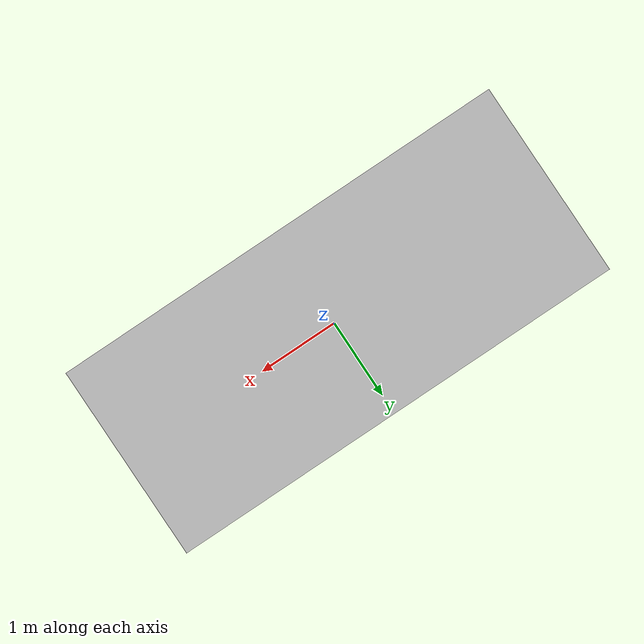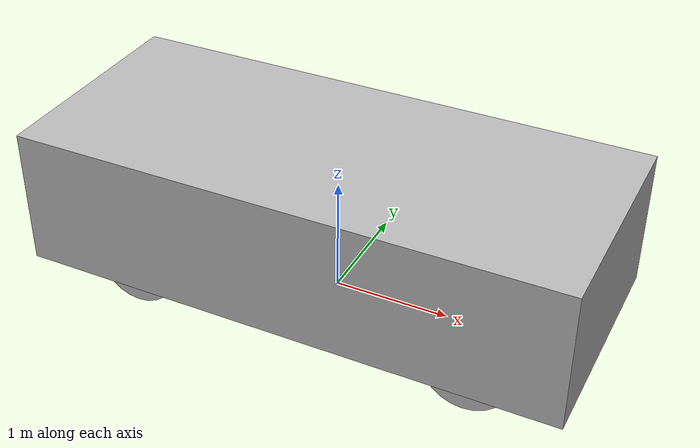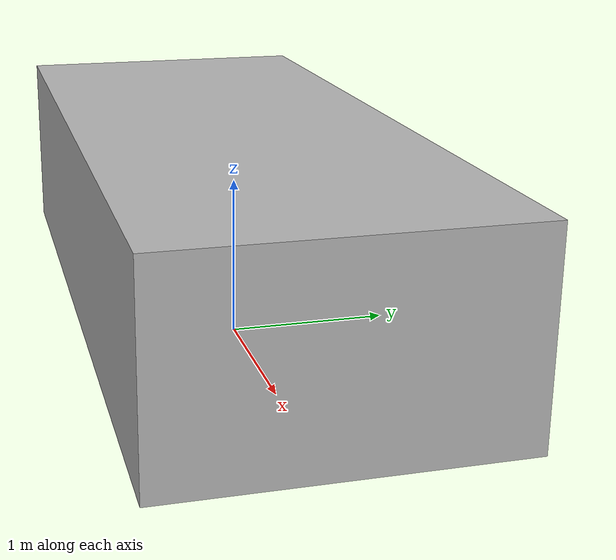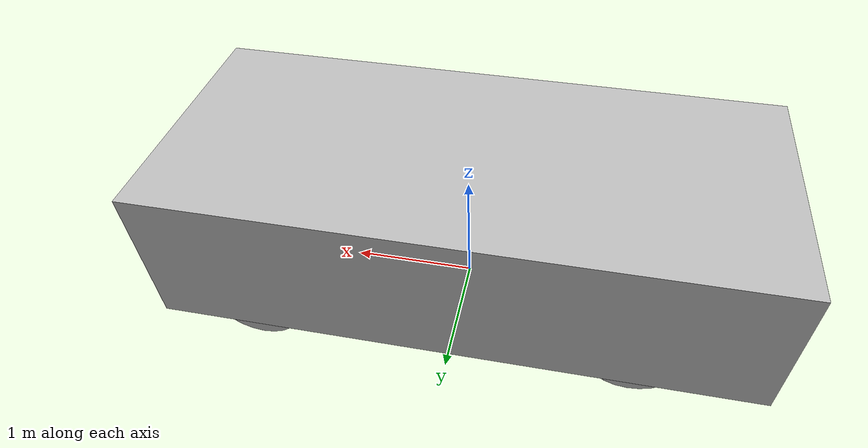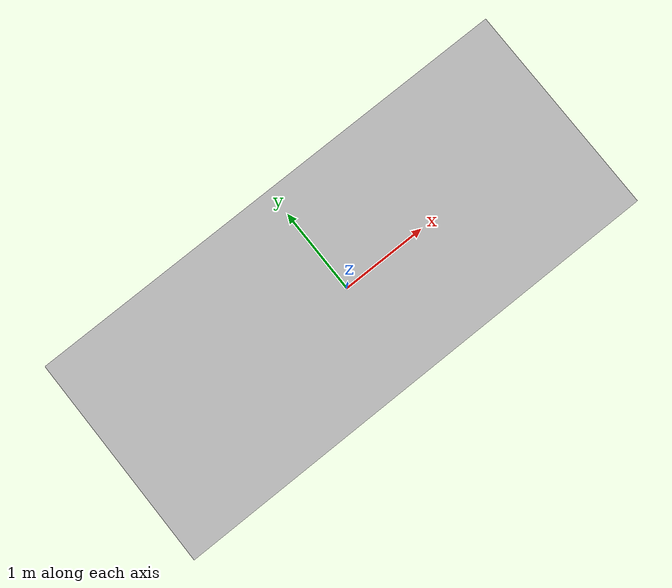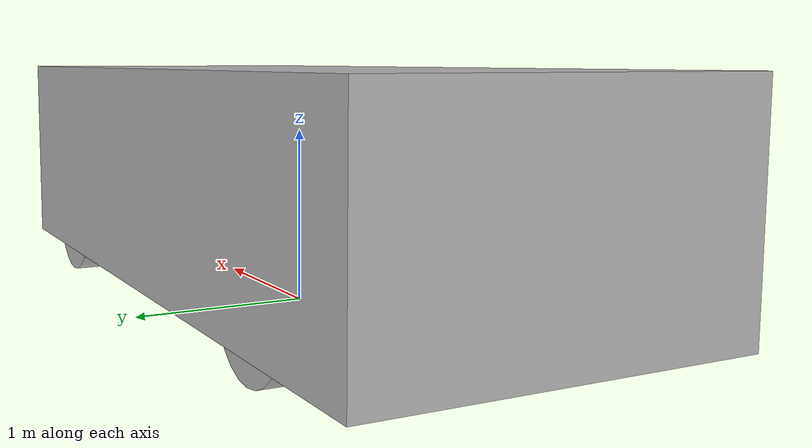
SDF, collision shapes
<?xml version="1.0"?>
<sdf version="1.7">
  <model name="mercedes_split_tex">
    <static>false</static>

    <!-- Chassis -->
    <link name="chassis">
      <pose>0 0 0 0 0 0</pose>
      <gravity>false</gravity>
      <inertial>
        <mass>800</mass>
        <inertia>
          <ixx>300</ixx><iyy>900</iyy><izz>1000</izz>
          <ixy>0</ixy><ixz>0</ixz><iyz>0</iyz>
        </inertia>
      </inertial>

      <visual name="body_visual">
        <!-- OBJ authored in Y-up; rotate to Gazebo Z-up + forward X -->
        <pose>0 0 0 1.5708 0 1.5708</pose>
        <geometry>
          <mesh>
            <uri>model://mercedes_split_tex/meshes/body.obj</uri>
            <scale>100 100 100</scale>
          </mesh>
        </geometry>
        <cast_shadows>false</cast_shadows>
      </visual>

      <collision name="chassis_collision">
        <pose>-0.05 0 0.76 0 0 0</pose>
        <geometry>
          <box><size>4.7 2.0 1.2</size></box>
        </geometry>
      </collision>
    </link>

    <!-- Front steering knuckles -->
    <link name="front_left_steer">
      <pose>1.5144 0.8183 0.3572 0 0 0</pose>
      <gravity>false</gravity>
      <inertial>
        <mass>2</mass>
        <inertia><ixx>0.1</ixx><iyy>0.1</iyy><izz>0.1</izz><ixy>0</ixy><ixz>0</ixz><iyz>0</iyz></inertia>
      </inertial>
    </link>

    <link name="front_right_steer">
      <pose>1.5144 -0.8185 0.3572 0 0 0</pose>
      <gravity>false</gravity>
      <inertial>
        <mass>2</mass>
        <inertia><ixx>0.1</ixx><iyy>0.1</iyy><izz>0.1</izz><ixy>0</ixy><ixz>0</ixz><iyz>0</iyz></inertia>
      </inertial>
    </link>

    <!-- Wheels -->
    <link name="front_left_wheel">
      <pose>1.5144 0.8183 0.3572 0 0 0</pose>
      <gravity>false</gravity>
      <inertial>
        <mass>20</mass>
        <inertia><ixx>1</ixx><iyy>1</iyy><izz>1</izz><ixy>0</ixy><ixz>0</ixz><iyz>0</iyz></inertia>
      </inertial>
      <visual name="wheel_fl_visual">
        <pose>-1.5144 -0.8183 -0.3572 1.5708 0 1.5708</pose>
        <geometry>
          <mesh>
            <uri>model://mercedes_split_tex/meshes/wheel_fl.obj</uri>
            <scale>100 100 100</scale>
          </mesh>
        </geometry>
        <cast_shadows>false</cast_shadows>
      </visual>
      <collision name="wheel_fl_collision">
        <pose>0 0 0 1.5708 0 0</pose>
        <geometry><cylinder><radius>0.355</radius><length>0.28</length></cylinder></geometry>
      </collision>
    </link>

    <link name="front_right_wheel">
      <pose>1.5144 -0.8185 0.3572 0 0 0</pose>
      <gravity>false</gravity>
      <inertial>
        <mass>20</mass>
        <inertia><ixx>1</ixx><iyy>1</iyy><izz>1</izz><ixy>0</ixy><ixz>0</ixz><iyz>0</iyz></inertia>
      </inertial>
      <visual name="wheel_fr_visual">
        <pose>-1.5144 0.8185 -0.3572 1.5708 0 1.5708</pose>
        <geometry>
          <mesh>
            <uri>model://mercedes_split_tex/meshes/wheel_fr.obj</uri>
            <scale>100 100 100</scale>
          </mesh>
        </geometry>
        <cast_shadows>false</cast_shadows>
      </visual>
      <collision name="wheel_fr_collision">
        <pose>0 0 0 1.5708 0 0</pose>
        <geometry><cylinder><radius>0.355</radius><length>0.28</length></cylinder></geometry>
      </collision>
    </link>

    <link name="rear_left_wheel">
      <pose>-1.4000 0.8023 0.3564 0 0 0</pose>
      <gravity>false</gravity>
      <inertial>
        <mass>20</mass>
        <inertia><ixx>1</ixx><iyy>1</iyy><izz>1</izz><ixy>0</ixy><ixz>0</ixz><iyz>0</iyz></inertia>
      </inertial>
      <visual name="wheel_rl_visual">
        <pose>1.4000 -0.8023 -0.3564 1.5708 0 1.5708</pose>
        <geometry>
          <mesh>
            <uri>model://mercedes_split_tex/meshes/wheel_rl.obj</uri>
            <scale>100 100 100</scale>
          </mesh>
        </geometry>
        <cast_shadows>false</cast_shadows>
      </visual>
      <collision name="wheel_rl_collision">
        <pose>0 0 0 1.5708 0 0</pose>
        <geometry><cylinder><radius>0.355</radius><length>0.28</length></cylinder></geometry>
      </collision>
    </link>

    <link name="rear_right_wheel">
      <pose>-1.4000 -0.8027 0.3564 0 0 0</pose>
      <gravity>false</gravity>
      <inertial>
        <mass>20</mass>
        <inertia><ixx>1</ixx><iyy>1</iyy><izz>1</izz><ixy>0</ixy><ixz>0</ixz><iyz>0</iyz></inertia>
      </inertial>
      <visual name="wheel_rr_visual">
        <pose>1.4000 0.8027 -0.3564 1.5708 0 1.5708</pose>
        <geometry>
          <mesh>
            <uri>model://mercedes_split_tex/meshes/wheel_rr.obj</uri>
            <scale>100 100 100</scale>
          </mesh>
        </geometry>
        <cast_shadows>false</cast_shadows>
      </visual>
      <collision name="wheel_rr_collision">
        <pose>0 0 0 1.5708 0 0</pose>
        <geometry><cylinder><radius>0.355</radius><length>0.28</length></cylinder></geometry>
      </collision>
    </link>

    <!-- Steering joints (front) -->
    <joint name="front_left_steer_joint" type="revolute">
      <parent>chassis</parent>
      <child>front_left_steer</child>
      <axis>
        <xyz>0 0 1</xyz>
        <limit>
          <lower>-0.6</lower><upper>0.6</upper>
          <effort>80</effort><velocity>10</velocity>
        </limit>
        <dynamics><damping>2.0</damping><friction>0.1</friction></dynamics>
      </axis>
    </joint>

    <joint name="front_right_steer_joint" type="revolute">
      <parent>chassis</parent>
      <child>front_right_steer</child>
      <axis>
        <xyz>0 0 1</xyz>
        <limit>
          <lower>-0.6</lower><upper>0.6</upper>
          <effort>80</effort><velocity>10</velocity>
        </limit>
        <dynamics><damping>2.0</damping><friction>0.1</friction></dynamics>
      </axis>
    </joint>

    <!-- Wheel spin joints -->
    <joint name="front_left_wheel_joint" type="revolute">
      <parent>front_left_steer</parent>
      <child>front_left_wheel</child>
      <axis>
        <xyz>0 1 0</xyz>
        <limit>
          <lower>-1e16</lower><upper>1e16</upper>
          <effort>200</effort><velocity>100</velocity>
        </limit>
        <dynamics><damping>1.0</damping><friction>0.2</friction></dynamics>
      </axis>
    </joint>

    <joint name="front_right_wheel_joint" type="revolute">
      <parent>front_right_steer</parent>
      <child>front_right_wheel</child>
      <axis>
        <xyz>0 1 0</xyz>
        <limit>
          <lower>-1e16</lower><upper>1e16</upper>
          <effort>200</effort><velocity>100</velocity>
        </limit>
        <dynamics><damping>1.0</damping><friction>0.2</friction></dynamics>
      </axis>
    </joint>

    <joint name="rear_left_wheel_joint" type="revolute">
      <parent>chassis</parent>
      <child>rear_left_wheel</child>
      <axis>
        <xyz>0 1 0</xyz>
        <limit>
          <lower>-1e16</lower><upper>1e16</upper>
          <effort>200</effort><velocity>100</velocity>
        </limit>
        <dynamics><damping>1.0</damping><friction>0.2</friction></dynamics>
      </axis>
    </joint>

    <joint name="rear_right_wheel_joint" type="revolute">
      <parent>chassis</parent>
      <child>rear_right_wheel</child>
      <axis>
        <xyz>0 1 0</xyz>
        <limit>
          <lower>-1e16</lower><upper>1e16</upper>
          <effort>200</effort><velocity>100</velocity>
        </limit>
        <dynamics><damping>1.0</damping><friction>0.2</friction></dynamics>
      </axis>
    </joint>

    <plugin name="ackermann" filename="libgazebo_ros_ackermann_drive.so">
      <chassis>chassis</chassis>
      <front_left_joint>front_left_wheel_joint</front_left_joint>
      <front_right_joint>front_right_wheel_joint</front_right_joint>
      <rear_left_joint>rear_left_wheel_joint</rear_left_joint>
      <rear_right_joint>rear_right_wheel_joint</rear_right_joint>
      <left_steering_joint>front_left_steer_joint</left_steering_joint>
      <right_steering_joint>front_right_steer_joint</right_steering_joint>

      <update_rate>60.0</update_rate>
      <left_steering_pid_gain>800 0 3</left_steering_pid_gain>
      <left_steering_i_range>0 0</left_steering_i_range>
      <right_steering_pid_gain>800 0 3</right_steering_pid_gain>
      <right_steering_i_range>0 0</right_steering_i_range>
      <linear_velocity_pid_gain>500 0 2</linear_velocity_pid_gain>
      <linear_velocity_i_range>0 0</linear_velocity_i_range>

      <max_steer>0.55</max_steer>
      <max_steering_angle>7.85</max_steering_angle>
      <max_speed>3.0</max_speed>

      <robot_base_frame>chassis</robot_base_frame>
      <odometry_frame>odom</odometry_frame>
      <publish_odom>0</publish_odom>
      <publish_odom_tf>0</publish_odom_tf>
      <publish_wheel_tf>1</publish_wheel_tf>
      <publish_distance>0</publish_distance>
    </plugin>
  </model>
</sdf>
